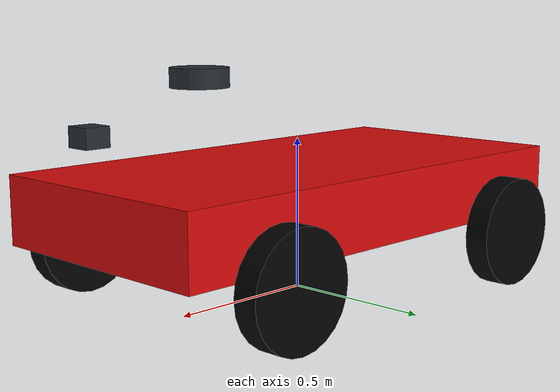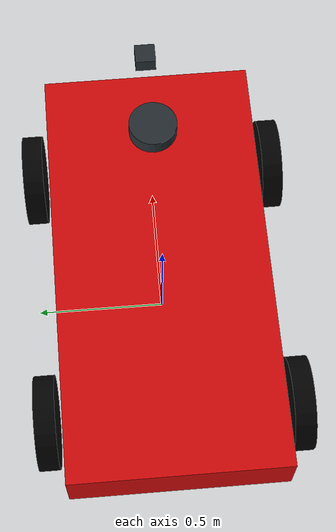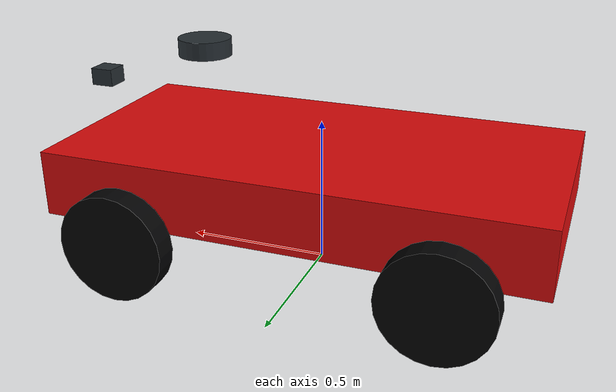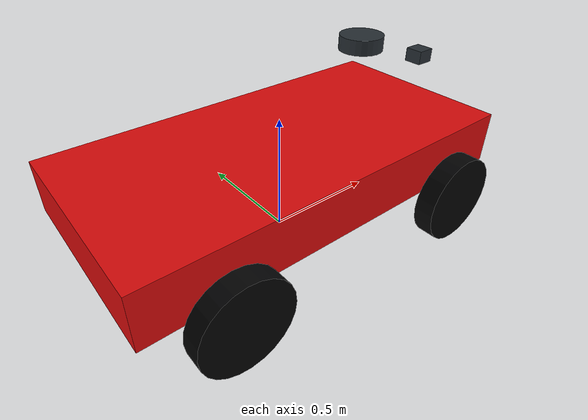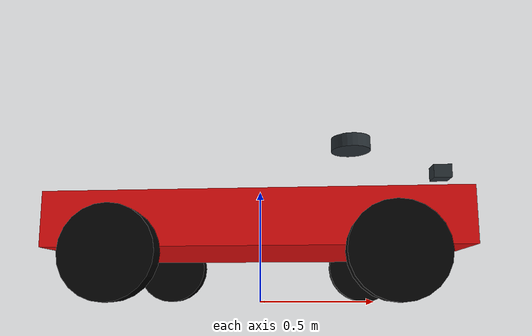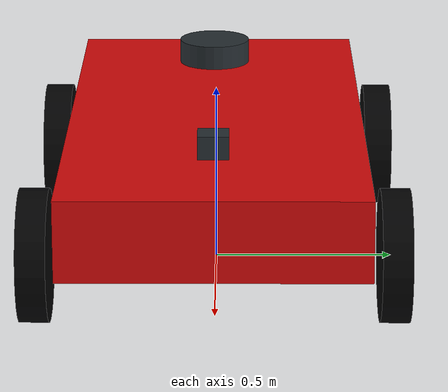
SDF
<?xml version="1.0" ?>
<sdf version="1.9">
  <model name="right_angle_car_harmonic">
    <pose>0 0 0 0 0 0</pose>
    <self_collide>false</self_collide>

    <plugin filename="gz-sim-diff-drive-system" name="gz::sim::systems::DiffDrive">
      <left_joint>left_rear_wheel_joint</left_joint>
      <right_joint>right_rear_wheel_joint</right_joint>
      <wheel_separation>0.96</wheel_separation>
      <wheel_radius>0.18</wheel_radius>
      <odom_publish_frequency>50</odom_publish_frequency>
      <topic>/cmd_vel</topic>
      <odom_topic>/sensors/wheel_odom</odom_topic>
      <frame_id>world</frame_id>
      <child_frame_id>base_link</child_frame_id>
    </plugin>

    <link name="base_link">
      <inertial>
        <pose>0 0 0.32 0 0 0</pose>
        <mass>18.0</mass>
        <inertia>
          <ixx>1.2</ixx>
          <ixy>0</ixy>
          <ixz>0</ixz>
          <iyy>3.1</iyy>
          <iyz>0</iyz>
          <izz>3.4</izz>
        </inertia>
      </inertial>
      <collision name="chassis_collision">
        <pose>0 0 0.32 0 0 0</pose>
        <geometry>
          <box>
            <size>1.65 0.82 0.22</size>
          </box>
        </geometry>
      </collision>
      <visual name="chassis_visual">
        <pose>0 0 0.32 0 0 0</pose>
        <geometry>
          <box>
            <size>1.65 0.82 0.22</size>
          </box>
        </geometry>
        <material>
          <ambient>0.85 0.04 0.04 1</ambient>
          <diffuse>0.85 0.04 0.04 1</diffuse>
        </material>
      </visual>
    </link>

    <link name="left_rear_wheel_link">
      <pose relative_to="base_link">-0.52 0.48 0.18 0 0 0</pose>
      <inertial>
        <mass>1.2</mass>
        <inertia>
          <ixx>0.02</ixx>
          <ixy>0</ixy>
          <ixz>0</ixz>
          <iyy>0.02</iyy>
          <iyz>0</iyz>
          <izz>0.02</izz>
        </inertia>
      </inertial>
      <collision name="collision">
        <pose>0 0 0 1.57079632679 0 0</pose>
        <geometry>
          <cylinder>
            <radius>0.18</radius>
            <length>0.08</length>
          </cylinder>
        </geometry>
        <surface>
          <friction>
            <ode>
              <mu>1.3</mu>
              <mu2>1.3</mu2>
            </ode>
          </friction>
        </surface>
      </collision>
      <visual name="visual">
        <pose>0 0 0 1.57079632679 0 0</pose>
        <geometry>
          <cylinder>
            <radius>0.18</radius>
            <length>0.08</length>
          </cylinder>
        </geometry>
        <material>
          <ambient>0.01 0.01 0.012 1</ambient>
          <diffuse>0.01 0.01 0.012 1</diffuse>
        </material>
      </visual>
    </link>

    <link name="right_rear_wheel_link">
      <pose relative_to="base_link">-0.52 -0.48 0.18 0 0 0</pose>
      <inertial>
        <mass>1.2</mass>
        <inertia>
          <ixx>0.02</ixx>
          <ixy>0</ixy>
          <ixz>0</ixz>
          <iyy>0.02</iyy>
          <iyz>0</iyz>
          <izz>0.02</izz>
        </inertia>
      </inertial>
      <collision name="collision">
        <pose>0 0 0 1.57079632679 0 0</pose>
        <geometry>
          <cylinder>
            <radius>0.18</radius>
            <length>0.08</length>
          </cylinder>
        </geometry>
        <surface>
          <friction>
            <ode>
              <mu>1.3</mu>
              <mu2>1.3</mu2>
            </ode>
          </friction>
        </surface>
      </collision>
      <visual name="visual">
        <pose>0 0 0 1.57079632679 0 0</pose>
        <geometry>
          <cylinder>
            <radius>0.18</radius>
            <length>0.08</length>
          </cylinder>
        </geometry>
        <material>
          <ambient>0.01 0.01 0.012 1</ambient>
          <diffuse>0.01 0.01 0.012 1</diffuse>
        </material>
      </visual>
    </link>

    <link name="left_front_wheel_link">
      <pose relative_to="base_link">0.52 0.48 0.18 0 0 0</pose>
      <inertial>
        <mass>1.2</mass>
        <inertia>
          <ixx>0.02</ixx>
          <ixy>0</ixy>
          <ixz>0</ixz>
          <iyy>0.02</iyy>
          <iyz>0</iyz>
          <izz>0.02</izz>
        </inertia>
      </inertial>
      <collision name="collision">
        <pose>0 0 0 1.57079632679 0 0</pose>
        <geometry>
          <cylinder>
            <radius>0.18</radius>
            <length>0.08</length>
          </cylinder>
        </geometry>
        <surface>
          <friction>
            <ode>
              <mu>0.4</mu>
              <mu2>0.4</mu2>
            </ode>
          </friction>
        </surface>
      </collision>
      <visual name="visual">
        <pose>0 0 0 1.57079632679 0 0</pose>
        <geometry>
          <cylinder>
            <radius>0.18</radius>
            <length>0.08</length>
          </cylinder>
        </geometry>
        <material>
          <ambient>0.01 0.01 0.012 1</ambient>
          <diffuse>0.01 0.01 0.012 1</diffuse>
        </material>
      </visual>
    </link>

    <link name="right_front_wheel_link">
      <pose relative_to="base_link">0.52 -0.48 0.18 0 0 0</pose>
      <inertial>
        <mass>1.2</mass>
        <inertia>
          <ixx>0.02</ixx>
          <ixy>0</ixy>
          <ixz>0</ixz>
          <iyy>0.02</iyy>
          <iyz>0</iyz>
          <izz>0.02</izz>
        </inertia>
      </inertial>
      <collision name="collision">
        <pose>0 0 0 1.57079632679 0 0</pose>
        <geometry>
          <cylinder>
            <radius>0.18</radius>
            <length>0.08</length>
          </cylinder>
        </geometry>
        <surface>
          <friction>
            <ode>
              <mu>0.4</mu>
              <mu2>0.4</mu2>
            </ode>
          </friction>
        </surface>
      </collision>
      <visual name="visual">
        <pose>0 0 0 1.57079632679 0 0</pose>
        <geometry>
          <cylinder>
            <radius>0.18</radius>
            <length>0.08</length>
          </cylinder>
        </geometry>
        <material>
          <ambient>0.01 0.01 0.012 1</ambient>
          <diffuse>0.01 0.01 0.012 1</diffuse>
        </material>
      </visual>
    </link>

    <joint name="left_rear_wheel_joint" type="revolute">
      <parent>base_link</parent>
      <child>left_rear_wheel_link</child>
      <axis>
        <xyz>0 1 0</xyz>
        <limit>
          <lower>-1e16</lower>
          <upper>1e16</upper>
          <effort>70</effort>
          <velocity>40</velocity>
        </limit>
        <dynamics>
          <damping>0.05</damping>
          <friction>0.02</friction>
        </dynamics>
      </axis>
    </joint>

    <joint name="right_rear_wheel_joint" type="revolute">
      <parent>base_link</parent>
      <child>right_rear_wheel_link</child>
      <axis>
        <xyz>0 1 0</xyz>
        <limit>
          <lower>-1e16</lower>
          <upper>1e16</upper>
          <effort>70</effort>
          <velocity>40</velocity>
        </limit>
        <dynamics>
          <damping>0.05</damping>
          <friction>0.02</friction>
        </dynamics>
      </axis>
    </joint>

    <joint name="left_front_wheel_joint" type="revolute">
      <parent>base_link</parent>
      <child>left_front_wheel_link</child>
      <axis>
        <xyz>0 1 0</xyz>
        <limit>
          <lower>-1e16</lower>
          <upper>1e16</upper>
          <effort>30</effort>
          <velocity>40</velocity>
        </limit>
        <dynamics>
          <damping>0.05</damping>
          <friction>0.02</friction>
        </dynamics>
      </axis>
    </joint>

    <joint name="right_front_wheel_joint" type="revolute">
      <parent>base_link</parent>
      <child>right_front_wheel_link</child>
      <axis>
        <xyz>0 1 0</xyz>
        <limit>
          <lower>-1e16</lower>
          <upper>1e16</upper>
          <effort>30</effort>
          <velocity>40</velocity>
        </limit>
        <dynamics>
          <damping>0.05</damping>
          <friction>0.02</friction>
        </dynamics>
      </axis>
    </joint>

    <link name="camera_link">
      <pose relative_to="base_link">0.82 0 0.58 0 0 0</pose>
      <inertial>
        <mass>0.1</mass>
        <inertia>
          <ixx>0.0001</ixx>
          <ixy>0</ixy>
          <ixz>0</ixz>
          <iyy>0.0001</iyy>
          <iyz>0</iyz>
          <izz>0.0001</izz>
        </inertia>
      </inertial>
      <visual name="visual">
        <geometry>
          <box>
            <size>0.08 0.08 0.06</size>
          </box>
        </geometry>
        <material>
          <ambient>0.15 0.18 0.2 1</ambient>
          <diffuse>0.15 0.18 0.2 1</diffuse>
        </material>
      </visual>
      <sensor name="front_camera" type="camera">
        <topic>/sensors/camera/image_raw</topic>
        <gz_frame_id>camera_optical_frame</gz_frame_id>
        <always_on>true</always_on>
        <update_rate>20</update_rate>
        <visualize>true</visualize>
        <camera>
          <optical_frame_id>camera_optical_frame</optical_frame_id>
          <camera_info_topic>/sensors/camera/camera_info</camera_info_topic>
          <horizontal_fov>1.3962634</horizontal_fov>
          <image>
            <width>800</width>
            <height>600</height>
            <format>R8G8B8</format>
          </image>
          <clip>
            <near>0.05</near>
            <far>60.0</far>
          </clip>
        </camera>
      </sensor>
    </link>

    <link name="lidar_link">
      <pose relative_to="base_link">0.42 0 0.72 0 0 0</pose>
      <inertial>
        <mass>0.25</mass>
        <inertia>
          <ixx>0.0005</ixx>
          <ixy>0</ixy>
          <ixz>0</ixz>
          <iyy>0.0005</iyy>
          <iyz>0</iyz>
          <izz>0.0005</izz>
        </inertia>
      </inertial>
      <visual name="visual">
        <geometry>
          <cylinder>
            <radius>0.09</radius>
            <length>0.06</length>
          </cylinder>
        </geometry>
        <material>
          <ambient>0.15 0.18 0.2 1</ambient>
          <diffuse>0.15 0.18 0.2 1</diffuse>
        </material>
      </visual>
      <sensor name="front_lidar" type="gpu_lidar">
        <topic>/sensors/lidar/scan</topic>
        <gz_frame_id>lidar_link</gz_frame_id>
        <always_on>true</always_on>
        <update_rate>15</update_rate>
        <visualize>true</visualize>
        <lidar>
          <scan>
            <horizontal>
              <samples>720</samples>
              <resolution>1</resolution>
              <min_angle>-2.35619</min_angle>
              <max_angle>2.35619</max_angle>
            </horizontal>
          </scan>
          <range>
            <min>0.12</min>
            <max>30.0</max>
            <resolution>0.01</resolution>
          </range>
          <noise>
            <type>gaussian</type>
            <mean>0.0</mean>
            <stddev>0.01</stddev>
          </noise>
        </lidar>
      </sensor>
    </link>

    <link name="gps_link">
      <pose relative_to="base_link">-0.25 0 0.78 0 0 0</pose>
      <sensor name="gps_sensor" type="navsat">
        <topic>/sensors/gps/fix</topic>
        <gz_frame_id>gps_link</gz_frame_id>
        <always_on>true</always_on>
        <update_rate>10</update_rate>
        <visualize>false</visualize>
        <navsat>
          <position_sensing>
            <horizontal>
              <noise type="gaussian">
                <mean>0.0</mean>
                <stddev>0.35</stddev>
              </noise>
            </horizontal>
            <vertical>
              <noise type="gaussian">
                <mean>0.0</mean>
                <stddev>0.5</stddev>
              </noise>
            </vertical>
          </position_sensing>
        </navsat>
      </sensor>
    </link>

    <link name="imu_link">
      <pose relative_to="base_link">0 0 0.36 0 0 0</pose>
      <sensor name="imu_sensor" type="imu">
        <topic>/sensors/imu/data_raw</topic>
        <gz_frame_id>imu_link</gz_frame_id>
        <always_on>true</always_on>
        <update_rate>100</update_rate>
        <visualize>false</visualize>
        <imu>
          <angular_velocity>
            <x>
              <noise type="gaussian">
                <mean>0.0</mean>
                <stddev>0.002</stddev>
              </noise>
            </x>
            <y>
              <noise type="gaussian">
                <mean>0.0</mean>
                <stddev>0.002</stddev>
              </noise>
            </y>
            <z>
              <noise type="gaussian">
                <mean>0.0</mean>
                <stddev>0.002</stddev>
              </noise>
            </z>
          </angular_velocity>
          <linear_acceleration>
            <x>
              <noise type="gaussian">
                <mean>0.0</mean>
                <stddev>0.03</stddev>
              </noise>
            </x>
            <y>
              <noise type="gaussian">
                <mean>0.0</mean>
                <stddev>0.03</stddev>
              </noise>
            </y>
            <z>
              <noise type="gaussian">
                <mean>0.0</mean>
                <stddev>0.03</stddev>
              </noise>
            </z>
          </linear_acceleration>
        </imu>
      </sensor>
    </link>

    <link name="magnetometer_link">
      <pose relative_to="base_link">0.15 0 0.62 0 0 0</pose>
      <sensor name="magnetometer_sensor" type="magnetometer">
        <topic>/sensors/magnetic_field</topic>
        <gz_frame_id>magnetometer_link</gz_frame_id>
        <always_on>true</always_on>
        <update_rate>30</update_rate>
        <visualize>false</visualize>
        <magnetometer>
          <x>
            <noise type="gaussian">
              <mean>0.0</mean>
              <stddev>0.000001</stddev>
            </noise>
          </x>
          <y>
            <noise type="gaussian">
              <mean>0.0</mean>
              <stddev>0.000001</stddev>
            </noise>
          </y>
          <z>
            <noise type="gaussian">
              <mean>0.0</mean>
              <stddev>0.000001</stddev>
            </noise>
          </z>
        </magnetometer>
      </sensor>
    </link>

    <joint name="camera_joint" type="fixed">
      <parent>base_link</parent>
      <child>camera_link</child>
    </joint>
    <joint name="lidar_joint" type="fixed">
      <parent>base_link</parent>
      <child>lidar_link</child>
    </joint>
    <joint name="gps_joint" type="fixed">
      <parent>base_link</parent>
      <child>gps_link</child>
    </joint>
    <joint name="imu_joint" type="fixed">
      <parent>base_link</parent>
      <child>imu_link</child>
    </joint>
    <joint name="magnetometer_joint" type="fixed">
      <parent>base_link</parent>
      <child>magnetometer_link</child>
    </joint>
  </model>
</sdf>
